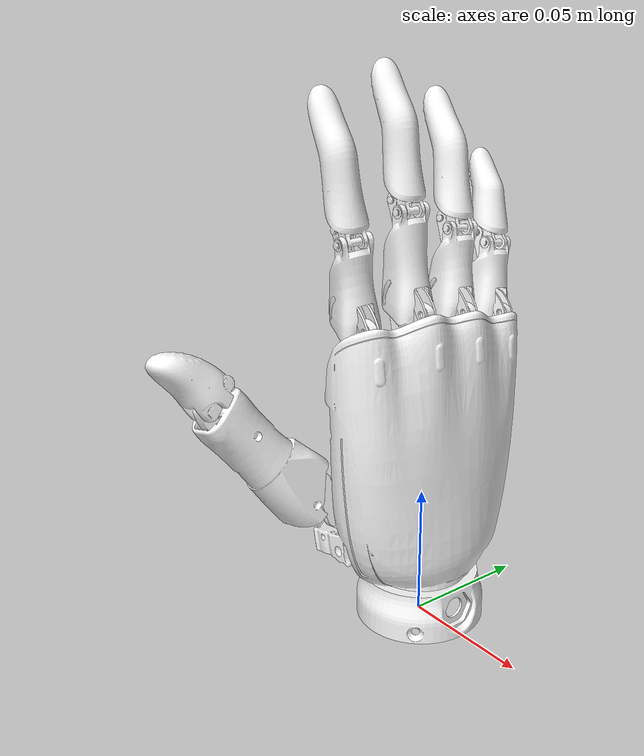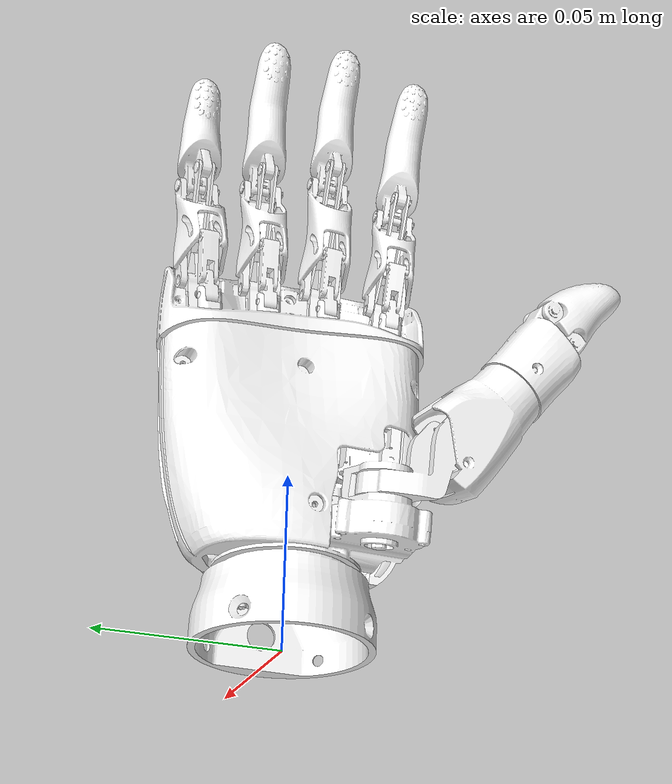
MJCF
<?xml version="1.0" encoding="utf-8"?>
<mujoco model="rohand_right">
  <compiler angle="radian" meshdir="right"/>
  <default>
    <joint damping="0.05"/>
  </default>
  <asset>
    <mesh name="base_link" content_type="model/stl" file="base_link.STL"/>
    <mesh name="if_slider_link" content_type="model/stl" file="if_slider_link.STL"/>
    <mesh name="if_slider_abpart_link" content_type="model/stl" file="if_slider_abpart_link.STL"/>
    <mesh name="if_proximal_link" content_type="model/stl" file="if_proximal_link.STL"/>
    <mesh name="if_distal_link" content_type="model/stl" file="if_distal_link.STL"/>
    <mesh name="if_connecting_link" content_type="model/stl" file="if_connecting_link.STL"/>
    <mesh name="mf_slider_link" content_type="model/stl" file="mf_slider_link.STL"/>
    <mesh name="mf_slider_abpart_link" content_type="model/stl" file="mf_slider_abpart_link.STL"/>
    <mesh name="mf_proximal_link" content_type="model/stl" file="mf_proximal_link.STL"/>
    <mesh name="mf_distal_link" content_type="model/stl" file="mf_distal_link.STL"/>
    <mesh name="mf_connecting_link" content_type="model/stl" file="mf_connecting_link.STL"/>
    <mesh name="rf_slider_link" content_type="model/stl" file="rf_slider_link.STL"/>
    <mesh name="rf_slider_abpart_link" content_type="model/stl" file="rf_slider_abpart_link.STL"/>
    <mesh name="rf_proximal_link" content_type="model/stl" file="rf_proximal_link.STL"/>
    <mesh name="rf_distal_link" content_type="model/stl" file="rf_distal_link.STL"/>
    <mesh name="rf_connecting_link" content_type="model/stl" file="rf_connecting_link.STL"/>
    <mesh name="lf_slider_link" content_type="model/stl" file="lf_slider_link.STL"/>
    <mesh name="lf_slider_abpart_link" content_type="model/stl" file="lf_slider_abpart_link.STL"/>
    <mesh name="lf_proximal_link" content_type="model/stl" file="lf_proximal_link.STL"/>
    <mesh name="lf_distal_link" content_type="model/stl" file="lf_distal_link.STL"/>
    <mesh name="lf_connecting_link" content_type="model/stl" file="lf_connecting_link.STL"/>
    <mesh name="th_root_link" content_type="model/stl" file="th_root_link.STL"/>
    <mesh name="th_proximal_link" content_type="model/stl" file="th_proximal_link.STL"/>
    <mesh name="th_slider_link" content_type="model/stl" file="th_slider_link.STL"/>
    <mesh name="th_connecting_link" content_type="model/stl" file="th_connecting_link.STL"/>
    <mesh name="th_distal_link" content_type="model/stl" file="th_distal_link.STL"/>
  </asset>
  <worldbody>
    <body name="hand_root" quat="0.7071068 0 0.7071068 0">
      <geom type="mesh" rgba="1 1 1 1" mesh="base_link" contype="0" conaffinity="0"/>
      <body name="if_slider_link" pos="-0.074396 -0.026655 -0.0059032">
        <inertial pos="-0.0138318 -0.00115448 1.0278e-06" quat="-0.0600476 0.707008 -0.00153027 0.70465" mass="0.000489138" diaginertia="3.92779e-08 3.84609e-08 4.37013e-09"/>
        <joint name="if_slider_link" pos="0 0 0" axis="0.996545 0.0830486 0" type="slide" range="0 0.019"/>
        <geom type="mesh" rgba="1 1 1 1" mesh="if_slider_link" contype="0" conaffinity="0"/>
        <body name="if_slider_abpart_link" pos="-0.029189 0.0010654 0.00030518">
          <inertial pos="-0.00954721 -0.00427267 -0.000544594" quat="-0.059867 0.654029 -0.0058836 0.754073" mass="0.000526636" diaginertia="6.57501e-09 5.76677e-09 1.90654e-09"/>
          <joint name="if_slider_abpart_link" pos="0 0 0" axis="-0.0827336 0.992755 0.0871346" range="-3.14159 3.14159" actuatorfrcrange="-1 1"/>
          <geom type="mesh" rgba="1 1 1 1" mesh="if_slider_abpart_link" contype="0" conaffinity="0"/>
        </body>
      </body>
      <body name="if_proximal_link" pos="-0.11324 -0.024137 0.0032314">
        <inertial pos="-0.016912 -0.00765749 -0.00334237" quat="-0.0599383 0.713749 -0.000859518 0.697832" mass="0.00154953" diaginertia="1.69636e-07 1.54789e-07 6.13114e-08"/>
        <joint name="if_proximal_link" pos="0 0 0" axis="-0.0824277 0.992777 0.0871767" range="-3.14159 3.14159" actuatorfrcrange="-1 1"/>
        <geom type="mesh" rgba="1 1 1 1" mesh="if_proximal_link" contype="0" conaffinity="0"/>
        <body name="if_distal_link" pos="-0.035776 -0.0028401 -0.0014841">
          <inertial pos="-0.0201375 -0.0076584 -0.00662951" quat="-0.0593374 0.620487 -0.00853236 0.781922" mass="0.00486632" diaginertia="5.74583e-07 5.61446e-07 7.8092e-08"/>
          <joint name="if_distal_link" pos="0 0 0" axis="-0.0824277 0.992777 0.0871767" range="-3.14159 3.14159" actuatorfrcrange="-1 1"/>
          <geom type="mesh" rgba="1 1 1 1" mesh="if_distal_link" contype="0" conaffinity="0"/>
        </body>
      </body>
      <body name="if_connecting_link" pos="-0.12029 -0.028806 0.0072922">
        <inertial pos="-0.0149214 -0.00339461 -0.00756951" quat="0.5426 0.405423 0.387104 0.625594" mass="0.000197689" diaginertia="2.70715e-08 2.67091e-08 3.8339e-10"/>
        <joint name="if_connecting_link" pos="0 0 0" axis="-0.0824277 0.992777 0.0871767" range="-3.14159 3.14159" actuatorfrcrange="-1 1"/>
        <geom type="mesh" rgba="1 1 1 1" mesh="if_connecting_link" contype="0" conaffinity="0"/>
      </body>
      <body name="mf_slider_link" pos="-0.076974 -0.010077 -0.0016353">
        <inertial pos="-0.0138786 -0.00018527 -7.69159e-08" quat="-0.0045896 0.706954 0.0045878 0.70723" mass="0.000489138" diaginertia="3.92779e-08 3.84609e-08 4.37013e-09"/>
        <joint name="mf_slider_link" pos="0 0 0" axis="0.999913 0.013228 0.00010039" type="slide" range="0 0.019"/>
        <geom type="mesh" rgba="1 1 1 1" mesh="mf_slider_link" contype="0" conaffinity="0"/>
        <body name="mf_slider_abpart_link" pos="-0.029044 0.0031153 0">
          <inertial pos="-0.00981195 -0.00362935 -0.000504859" quat="-0.00509235 0.643645 0.00421773 0.765295" mass="0.000526636" diaginertia="6.57501e-09 5.76677e-09 1.90654e-09"/>
          <joint name="mf_slider_abpart_link" pos="0 0 0" axis="-0.013228 0.999913 7.25942e-05" range="-3.14159 3.14159" actuatorfrcrange="-1 1"/>
          <geom type="mesh" rgba="1 1 1 1" mesh="mf_slider_abpart_link" contype="0" conaffinity="0"/>
        </body>
      </body>
      <body name="mf_proximal_link" pos="-0.11605 -0.0040932 0.0069659">
        <inertial pos="-0.0197979 -0.00676309 -0.00446755" quat="-0.00479228 0.685827 0.00455406 0.727734" mass="0.00189502" diaginertia="2.46791e-07 2.34066e-07 7.71816e-08"/>
        <joint name="mf_proximal_link" pos="0 0 0" axis="-0.013244 0.999912 -4.26991e-05" range="-3.14159 3.14159" actuatorfrcrange="-1 1"/>
        <geom type="mesh" rgba="1 1 1 1" mesh="mf_proximal_link" contype="0" conaffinity="0"/>
        <body name="mf_distal_link" pos="-0.040851 -0.00054126 -0.0035364">
          <inertial pos="-0.02058 -0.00679451 -0.00619599" quat="-0.00506217 0.618045 0.00410755 0.786116" mass="0.00486611" diaginertia="5.7452e-07 5.61384e-07 7.80913e-08"/>
          <joint name="mf_distal_link" pos="0 0 0" axis="-0.013244 0.999912 -2.1055e-05" range="-3.14159 3.14159" actuatorfrcrange="-1 1"/>
          <geom type="mesh" rgba="1 1 1 1" mesh="mf_distal_link" contype="0" conaffinity="0"/>
        </body>
      </body>
      <body name="mf_connecting_link" pos="-0.12342 -0.0078912 0.011366">
        <inertial pos="-0.0172404 -0.00302882 -0.00839495" quat="0.582478 0.392552 0.397798 0.590236" mass="0.000216186" diaginertia="3.8512e-08 3.81381e-08 3.96995e-10"/>
        <joint name="mf_connecting_link" pos="0 0 0" axis="-0.013244 0.999912 -2.1054e-05" range="-3.14159 3.14159" actuatorfrcrange="-1 1"/>
        <geom type="mesh" rgba="1 1 1 1" mesh="mf_connecting_link" contype="0" conaffinity="0"/>
      </body>
      <body name="rf_slider_link" pos="-0.074498 0.0072492 -0.0023801">
        <inertial pos="-0.0138577 0.000783292 -2.57947e-09" quat="0.0200948 0.706685 -0.020087 0.706958" mass="0.000489138" diaginertia="3.92779e-08 3.84609e-08 4.37013e-09"/>
        <joint name="rf_slider_link" pos="0 0 0" axis="0.9984 -0.056554 9.5082e-05" type="slide" range="0 0.019"/>
        <geom type="mesh" rgba="1 1 1 1" mesh="rf_slider_link" contype="0" conaffinity="0"/>
        <body name="rf_slider_abpart_link" pos="-0.028756 0.0051336 0">
          <inertial pos="-0.0100461 -0.00293581 -0.00039841" quat="0.0215166 0.647552 -0.018367 0.761496" mass="0.000526636" diaginertia="6.57501e-09 5.76677e-09 1.90654e-09"/>
          <joint name="rf_slider_abpart_link" pos="0 0 0" axis="0.056554 0.9984 7.942e-05" range="-3.14159 3.14159" actuatorfrcrange="-1 1"/>
          <geom type="mesh" rgba="1 1 1 1" mesh="rf_slider_abpart_link" contype="0" conaffinity="0"/>
        </body>
      </body>
      <body name="rf_proximal_link" pos="-0.11287 0.015935 0.0062161">
        <inertial pos="-0.017731 -0.0055052 -0.00333587" quat="0.0203011 0.702374 -0.0197309 0.711245" mass="0.00154953" diaginertia="1.69636e-07 1.5479e-07 6.13116e-08"/>
        <joint name="rf_proximal_link" pos="0 0 0" axis="0.0565799 0.998398 -2.102e-05" range="-3.14159 3.14159" actuatorfrcrange="-1 1"/>
        <geom type="mesh" rgba="1 1 1 1" mesh="rf_proximal_link" contype="0" conaffinity="0"/>
        <body name="rf_distal_link" pos="-0.035766 0.0020268 -0.0026198">
          <inertial pos="-0.0205453 -0.0053675 -0.00756098" quat="0.0229178 0.591241 -0.0167617 0.805995" mass="0.00486608" diaginertia="5.74506e-07 5.61368e-07 7.8092e-08"/>
          <joint name="rf_distal_link" pos="0 0 0" axis="0.0565799 0.998398 -2.102e-05" range="-3.14159 3.14159" actuatorfrcrange="-1 1"/>
          <geom type="mesh" rgba="1 1 1 1" mesh="rf_distal_link" contype="0" conaffinity="0"/>
        </body>
      </body>
      <body name="rf_connecting_link" pos="-0.120485 0.0126605 0.0106154">
        <inertial pos="-0.0149582 -0.00195701 -0.00799324" quat="0.610774 0.394011 0.372326 0.577133" mass="0.000197689" diaginertia="2.70715e-08 2.67091e-08 3.8339e-10"/>
        <joint name="rf_connecting_link" pos="0 0 0" axis="0.0565797 0.998398 -2.10198e-05" range="-3.14159 3.14159" actuatorfrcrange="-1 1"/>
        <geom type="mesh" rgba="1 1 1 1" mesh="rf_connecting_link" contype="0" conaffinity="0"/>
      </body>
      <body name="lf_slider_link" pos="-0.0708466 0.0241824 -0.00489967">
        <inertial pos="-0.013783 0.00163674 3.10003e-07" quat="0.0726697 0.706881 -0.0110278 0.703503" mass="0.000489138" diaginertia="3.92779e-08 3.84609e-08 4.37013e-09"/>
        <joint name="lf_slider_link" pos="0 0 0" axis="0.99301 -0.118033 8.27045e-05" type="slide" range="0 0.019"/>
        <geom type="mesh" rgba="1 1 1 1" mesh="lf_slider_link" contype="0" conaffinity="0"/>
        <body name="lf_slider_abpart_link" pos="-0.0283858 0.0068845 -0.000306788">
          <inertial pos="-0.0102064 -0.0023426 -0.000209526" quat="0.0731498 0.643444 -0.00457337 0.761976" mass="0.000526636" diaginertia="6.57501e-09 5.76677e-09 1.90654e-09"/>
          <joint name="lf_slider_abpart_link" pos="0 0 0" axis="0.117591 0.989231 -0.08715" range="-3.14159 3.14159" actuatorfrcrange="-1 1"/>
          <geom type="mesh" rgba="1 1 1 1" mesh="lf_slider_abpart_link" contype="0" conaffinity="0"/>
        </body>
      </body>
      <body name="lf_proximal_link" pos="-0.108711 0.0359584 0.00309824">
        <inertial pos="-0.0162289 -0.00489296 -0.00285462" quat="0.0727719 0.691913 -0.00944149 0.718242" mass="0.00136678" diaginertia="1.27497e-07 1.1282e-07 5.56945e-08"/>
        <joint name="lf_proximal_link" pos="0 0 0" axis="0.117591 0.989234 -0.0871064" range="-3.14159 3.14159" actuatorfrcrange="-1 1"/>
        <geom type="mesh" rgba="1 1 1 1" mesh="lf_proximal_link" contype="0" conaffinity="0"/>
        <body name="lf_distal_link" pos="-0.031562 0.0034532 -0.003392">
          <inertial pos="-0.0131614 -0.00544871 -0.00463526" quat="0.0733114 0.577387 0.00152047 0.813171" mass="0.00327" diaginertia="1.66928e-07 1.53544e-07 4.54432e-08"/>
          <joint name="lf_distal_link" pos="0 0 0" axis="0.117591 0.989235 -0.0871064" range="-3.14159 3.14159" actuatorfrcrange="-1 1"/>
          <geom type="mesh" rgba="1 1 1 1" mesh="lf_distal_link" contype="0" conaffinity="0"/>
        </body>
      </body>
      <body name="lf_connecting_link" pos="-0.11647 0.033555 0.0078033">
        <inertial pos="-0.0129209 -0.0019848 -0.00783824" quat="0.658157 0.354446 0.365025 0.554936" mass="0.000176982" diaginertia="2.00918e-08 1.97697e-08 3.40912e-10"/>
        <joint name="lf_connecting_link" pos="0 0 0" axis="0.11759 0.989237 -0.0870847" range="-3.14159 3.14159" actuatorfrcrange="-1 1"/>
        <geom type="mesh" rgba="1 1 1 1" mesh="lf_connecting_link" contype="0" conaffinity="0"/>
      </body>
      <body name="th_root_link" pos="-0.024656 -0.019554 -0.018266">
        <inertial pos="-0.0182056 -0.00620278 -0.00602505" quat="0.379061 0.173557 0.585521 0.695238" mass="0.00217782" diaginertia="2.76915e-07 2.31601e-07 1.06288e-07"/>
        <joint name="th_root_link" pos="0 0 0" axis="0.976159 0.01293 0.21667" range="0 1.57"/>
        <geom type="mesh" rgba="1 1 1 1" mesh="th_root_link" contype="0" conaffinity="0"/>
        <body name="th_proximal_link" pos="-0.025097 -0.021667 -0.015581">
          <inertial pos="-0.0184116 -0.0115354 0.00417629" quat="-0.146061 0.608385 0.207004 0.75212" mass="0.00501308" diaginertia="2.07812e-06 1.88848e-06 2.93843e-07"/>
          <joint name="th_proximal_link" pos="0 0 0" axis="-0.21699 -0.0320289 0.975648" range="-3.14159 3.14159" actuatorfrcrange="-1 1"/>
          <geom type="mesh" rgba="1 1 1 1" mesh="th_proximal_link" contype="0" conaffinity="0"/>
          <body name="th_slider_link" pos="-0.0053401 -0.0053494 0.0068801">
            <inertial pos="-0.0085161 -0.00542249 -0.00171626" quat="0.369388 0.219642 0.616109 0.66009" mass="0.000966928" diaginertia="7.86116e-08 6.04686e-08 2.46847e-08"/>
            <joint name="th_slider_link" pos="0 0 0" axis="-0.76198 -0.63028 -0.14877" type="slide" range="0 0.01"/>
            <geom type="mesh" rgba="1 1 1 1" mesh="th_slider_link" contype="0" conaffinity="0"/>
            <body name="th_connecting_link" pos="-0.026144 -0.020984 -0.0010258">
              <inertial pos="-0.00136684 -0.00145248 -0.00439754" quat="0.444078 0.301073 0.564623 0.627177" mass="0.000607798" diaginertia="7.50727e-09 5.28315e-09 4.01801e-09"/>
              <joint name="th_connecting_link" pos="0 0 0" axis="-0.21699 0.0320289 0.975648" range="-3.14159 3.14159" actuatorfrcrange="-1 1"/>
              <geom type="mesh" rgba="1 1 1 1" mesh="th_connecting_link" contype="0" conaffinity="0"/>
            </body>
          </body>
          <body name="th_distal_link" pos="-0.049076 -0.023254 0.004868">
            <inertial pos="-0.000439995 -0.0101523 -0.00690883" quat="0.670795 0.688235 -0.256896 -0.101837" mass="0.00601773" diaginertia="3.24886e-07 2.42046e-07 1.84884e-07"/>
            <joint name="th_distal_link" pos="0 0 0" axis="-0.21698 0.032029 0.97565" range="-3.14159 3.14159" actuatorfrcrange="-1 1"/>
            <geom type="mesh" rgba="1 1 1 1" mesh="th_distal_link" contype="0" conaffinity="0"/>
          </body>
        </body>
      </body>
    </body>
  </worldbody>
  <equality>
    <joint name="if_distal_mimic"  joint1="if_distal_link"  joint2="if_proximal_link"  polycoef="-0.034824 1.138285 0 0 0" solref="0.01 1" solimp="0.99 0.999 0.001"/>
    <joint name="mf_distal_mimic"  joint1="mf_distal_link"  joint2="mf_proximal_link"  polycoef="-0.033724 1.139937 0 0 0" solref="0.01 1" solimp="0.99 0.999 0.001"/>
    <joint name="rf_distal_mimic"  joint1="rf_distal_link"  joint2="rf_proximal_link"  polycoef="-0.033167 1.134612 0 0 0" solref="0.01 1" solimp="0.99 0.999 0.001"/>
    <joint name="lf_distal_mimic"  joint1="lf_distal_link"  joint2="lf_proximal_link"  polycoef="-0.067444 1.152366 0 0 0" solref="0.01 1" solimp="0.99 0.999 0.001"/>
    <joint name="th_distal_mimic"  joint1="th_distal_link"  joint2="th_proximal_link"  polycoef="-0.037509 1.229686 0 0 0" solref="0.01 1" solimp="0.99 0.999 0.001"/>
  </equality>
  <visual>
    <global offwidth="1280" offheight="720"/>
  </visual>
  <option gravity="0 0 0"/>
  <actuator>
    <position name="if_slider_link_pos" joint="if_slider_link" kp="50.0" ctrlrange="0.0 0.019"/>
    <position name="if_slider_abpart_link_pos" joint="if_slider_abpart_link" kp="50.0" ctrlrange="-3.14159 3.14159"/>
    <position name="if_proximal_link_pos" joint="if_proximal_link" kp="50.0" ctrlrange="-3.14159 3.14159"/>
    <position name="if_connecting_link_pos" joint="if_connecting_link" kp="50.0" ctrlrange="-3.14159 3.14159"/>
    <position name="mf_slider_link_pos" joint="mf_slider_link" kp="50.0" ctrlrange="0.0 0.019"/>
    <position name="mf_slider_abpart_link_pos" joint="mf_slider_abpart_link" kp="50.0" ctrlrange="-3.14159 3.14159"/>
    <position name="mf_proximal_link_pos" joint="mf_proximal_link" kp="50.0" ctrlrange="-3.14159 3.14159"/>
    <position name="mf_connecting_link_pos" joint="mf_connecting_link" kp="50.0" ctrlrange="-3.14159 3.14159"/>
    <position name="rf_slider_link_pos" joint="rf_slider_link" kp="50.0" ctrlrange="0.0 0.019"/>
    <position name="rf_slider_abpart_link_pos" joint="rf_slider_abpart_link" kp="50.0" ctrlrange="-3.14159 3.14159"/>
    <position name="rf_proximal_link_pos" joint="rf_proximal_link" kp="50.0" ctrlrange="-3.14159 3.14159"/>
    <position name="rf_connecting_link_pos" joint="rf_connecting_link" kp="50.0" ctrlrange="-3.14159 3.14159"/>
    <position name="lf_slider_link_pos" joint="lf_slider_link" kp="50.0" ctrlrange="0.0 0.019"/>
    <position name="lf_slider_abpart_link_pos" joint="lf_slider_abpart_link" kp="50.0" ctrlrange="-3.14159 3.14159"/>
    <position name="lf_proximal_link_pos" joint="lf_proximal_link" kp="50.0" ctrlrange="-3.14159 3.14159"/>
    <position name="lf_connecting_link_pos" joint="lf_connecting_link" kp="50.0" ctrlrange="-3.14159 3.14159"/>
    <position name="th_root_link_pos" joint="th_root_link" kp="50.0" ctrlrange="0.0 1.57"/>
    <position name="th_proximal_link_pos" joint="th_proximal_link" kp="50.0" ctrlrange="-3.14159 3.14159"/>
    <position name="th_slider_link_pos" joint="th_slider_link" kp="50.0" ctrlrange="0.0 0.01"/>
    <position name="th_connecting_link_pos" joint="th_connecting_link" kp="50.0" ctrlrange="-3.14159 3.14159"/>
  </actuator>
</mujoco>
